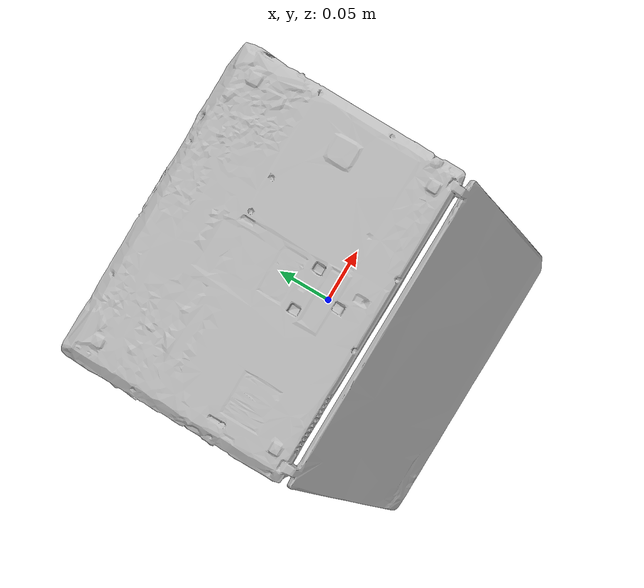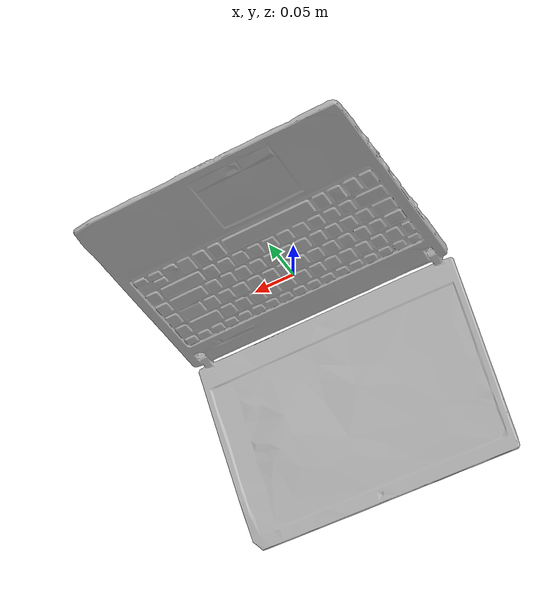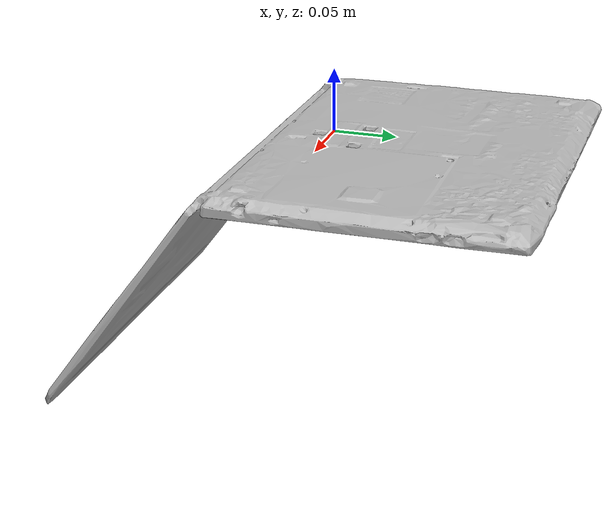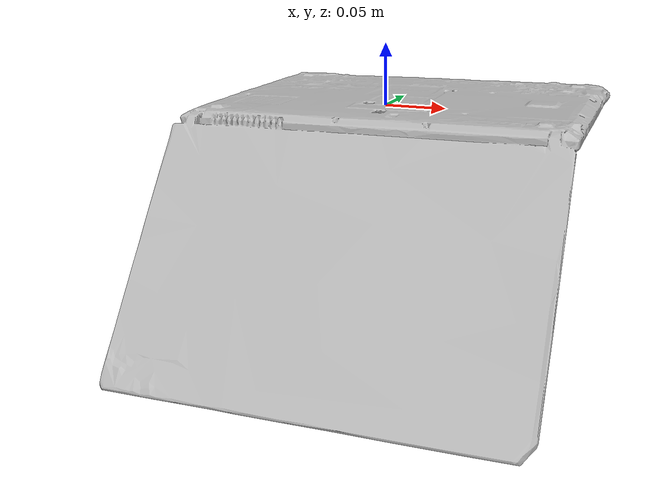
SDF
<?xml version="1.0" ?>
<sdf version="1.6">
  <model name="Travel_Mate_P_series_Notebook">
    <static>true</static>
    <link name="link_0">
      <pose>0 0 0 3.14 0 0</pose>
      <visual name="visual">
        <geometry>
          <mesh>
            <uri>model://Travel_Mate_P_series_Notebook/meshes/model.obj</uri>
          </mesh>
        </geometry>
      </visual>
      <collision name="collision_0">
        <geometry>
          <mesh>
            <uri>model://Travel_Mate_P_series_Notebook/meshes/model.obj</uri>
          </mesh>
        </geometry>
      </collision>
    </link>
  </model>
</sdf>
